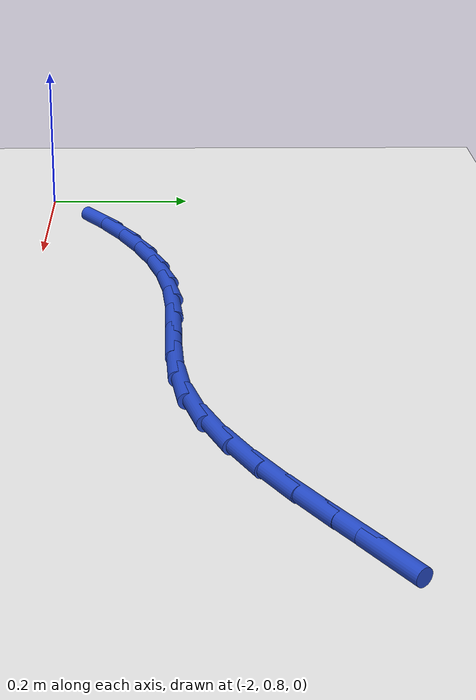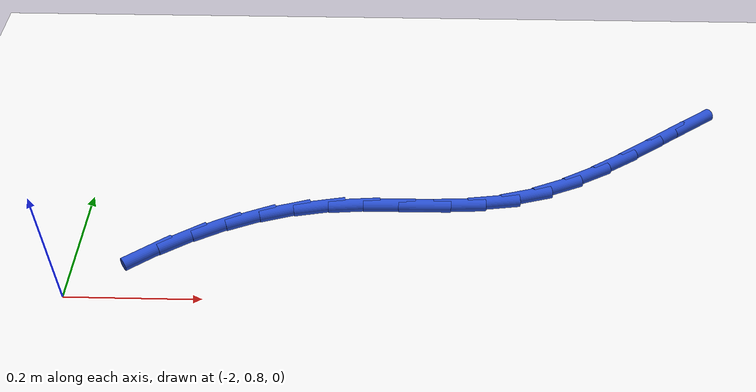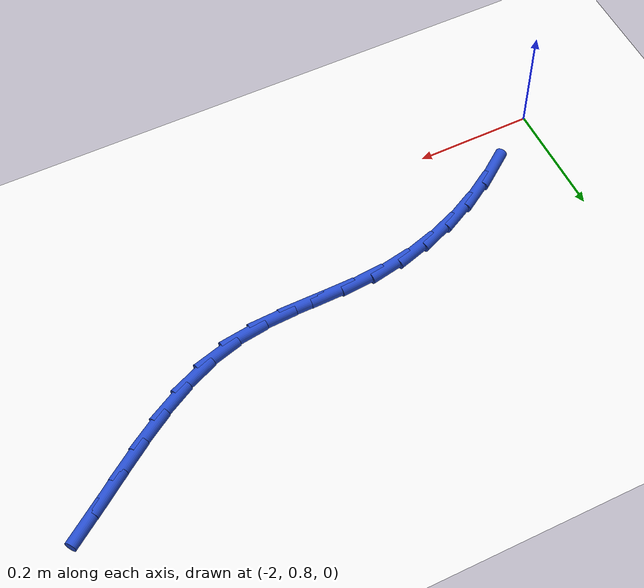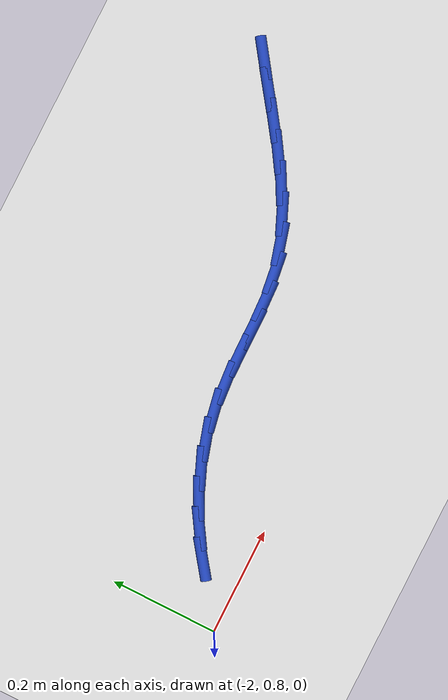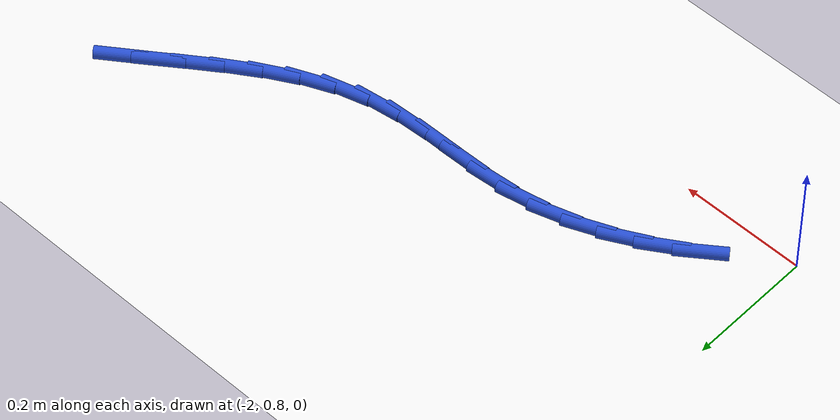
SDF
<sdf version="1.6">
 <world name="default">
  <model name="ground_plane">
   <static>1</static>
   <link name="link">
    <collision name="collision">
     <geometry><plane><normal>0 0 1</normal><size>100 100</size></plane></geometry>
     <surface><friction><ode><mu>100</mu><mu2>50</mu2></ode></friction></surface>
    </collision>
    <visual name="visual">
     <cast_shadows>0</cast_shadows>
     <geometry><plane><normal>0 0 1</normal><size>100 100</size></plane></geometry>
     <material>
      <script><uri>file://media/materials/scripts/gazebo.material</uri><name>Gazebo/WhiteGlow</name></script>
     </material>
    </visual>
   </link>
  </model>
  <model name="line">
   <link name="link_35">
    <pose>-1.0486640952737338 1.1815275703631092 0.01 0 1.57 0.6168831982159091</pose>
    <collision name="collision">
     <geometry><cylinder><radius>0.01</radius><length>0.08</length></cylinder></geometry>
    </collision>
    <visual name="visual">
     <material>
      <script><name>Gazebo/Blue</name><uri>file://media/materials/scripts/gazebo.material</uri></script>
     </material>
     <geometry><cylinder><radius>0.01</radius><length>0.08</length></cylinder></geometry>
    </visual>
   </link>
   <link name="link_36">
    <pose>-1.09414152573304 1.1492743350750647 0.01 0 1.57 0.62619913358248</pose>
    <collision name="collision">
     <geometry><cylinder><radius>0.01</radius><length>0.08</length></cylinder></geometry>
    </collision>
    <visual name="visual">
     <material>
      <script><name>Gazebo/Blue</name><uri>file://media/materials/scripts/gazebo.material</uri></script>
     </material>
     <geometry><cylinder><radius>0.01</radius><length>0.08</length></cylinder></geometry>
    </visual>
   </link>
   <link name="link_37">
    <pose>-1.139787754116079 1.1162579912461852 0.01 0 1.57 0.6107113216895229</pose>
    <collision name="collision">
     <geometry><cylinder><radius>0.01</radius><length>0.08</length></cylinder></geometry>
    </collision>
    <visual name="visual">
     <material>
      <script><name>Gazebo/Blue</name><uri>file://media/materials/scripts/gazebo.material</uri></script>
     </material>
     <geometry><cylinder><radius>0.01</radius><length>0.08</length></cylinder></geometry>
    </visual>
   </link>
   <link name="link_38">
    <pose>-1.1858853573160812 1.0839906747359813 0.01 0 1.57 0.5698274325326032</pose>
    <collision name="collision">
     <geometry><cylinder><radius>0.01</radius><length>0.08</length></cylinder></geometry>
    </collision>
    <visual name="visual">
     <material>
      <script><name>Gazebo/Blue</name><uri>file://media/materials/scripts/gazebo.material</uri></script>
     </material>
     <geometry><cylinder><radius>0.01</radius><length>0.08</length></cylinder></geometry>
    </visual>
   </link>
   <link name="link_39">
    <pose>-1.2327169122262789 1.0539845214039603 0.01 0 1.57 0.5015009381086317</pose>
    <collision name="collision">
     <geometry><cylinder><radius>0.01</radius><length>0.08</length></cylinder></geometry>
    </collision>
    <visual name="visual">
     <material>
      <script><name>Gazebo/Blue</name><uri>file://media/materials/scripts/gazebo.material</uri></script>
     </material>
     <geometry><cylinder><radius>0.01</radius><length>0.08</length></cylinder></geometry>
    </visual>
   </link>
   <link name="link_40">
    <pose>-1.2805649957399017 1.027751667109632 0.01 0 1.57 0.4029018999677981</pose>
    <collision name="collision">
     <geometry><cylinder><radius>0.01</radius><length>0.08</length></cylinder></geometry>
    </collision>
    <visual name="visual">
     <material>
      <script><name>Gazebo/Blue</name><uri>file://media/materials/scripts/gazebo.material</uri></script>
     </material>
     <geometry><cylinder><radius>0.01</radius><length>0.08</length></cylinder></geometry>
    </visual>
   </link>
   <link name="link_41">
    <pose>-1.3297121847501825 1.006804247712505 0.01 0 1.57 0.2721472239329551</pose>
    <collision name="collision">
     <geometry><cylinder><radius>0.01</radius><length>0.08</length></cylinder></geometry>
    </collision>
    <visual name="visual">
     <material>
      <script><name>Gazebo/Blue</name><uri>file://media/materials/scripts/gazebo.material</uri></script>
     </material>
     <geometry><cylinder><radius>0.01</radius><length>0.08</length></cylinder></geometry>
    </visual>
   </link>
   <link name="link_42">
    <pose>-1.3804396374061165 0.9926476763889887 0.01 0 1.57 0.1345304223217582</pose>
    <collision name="collision">
     <geometry><cylinder><radius>0.01</radius><length>0.08</length></cylinder></geometry>
    </collision>
    <visual name="visual">
     <material>
      <script><name>Gazebo/Blue</name><uri>file://media/materials/scripts/gazebo.material</uri></script>
     </material>
     <geometry><cylinder><radius>0.01</radius><length>0.08</length></cylinder></geometry>
    </visual>
   </link>
   <link name="link_43">
    <pose>-1.4327705037528438 0.9855648015450075 0.01 0 1.57 0.04417707886031743</pose>
    <collision name="collision">
     <geometry><cylinder><radius>0.01</radius><length>0.08</length></cylinder></geometry>
    </collision>
    <visual name="visual">
     <material>
      <script><name>Gazebo/Blue</name><uri>file://media/materials/scripts/gazebo.material</uri></script>
     </material>
     <geometry><cylinder><radius>0.01</radius><length>0.08</length></cylinder></geometry>
    </visual>
   </link>
   <link name="link_44">
    <pose>-1.4861719895757746 0.9832041439970333 0.01 0 1.57 0.006169271556818146</pose>
    <collision name="collision">
     <geometry><cylinder><radius>0.01</radius><length>0.08</length></cylinder></geometry>
    </collision>
    <visual name="visual">
     <material>
      <script><name>Gazebo/Blue</name><uri>file://media/materials/scripts/gazebo.material</uri></script>
     </material>
     <geometry><cylinder><radius>0.01</radius><length>0.08</length></cylinder></geometry>
    </visual>
   </link>
   <link name="link_45">
    <pose>-1.5400390400083295 0.9828718193188567 0.01 0 1.57 0.018570758008508312</pose>
    <collision name="collision">
     <geometry><cylinder><radius>0.01</radius><length>0.08</length></cylinder></geometry>
    </collision>
    <visual name="visual">
     <material>
      <script><name>Gazebo/Blue</name><uri>file://media/materials/scripts/gazebo.material</uri></script>
     </material>
     <geometry><cylinder><radius>0.01</radius><length>0.08</length></cylinder></geometry>
    </visual>
   </link>
   <link name="link_46">
    <pose>-1.5937666001839301 0.9818739430842693 0.01 0 1.57 0.08205473744704245</pose>
    <collision name="collision">
     <geometry><cylinder><radius>0.01</radius><length>0.08</length></cylinder></geometry>
    </collision>
    <visual name="visual">
     <material>
      <script><name>Gazebo/Blue</name><uri>file://media/materials/scripts/gazebo.material</uri></script>
     </material>
     <geometry><cylinder><radius>0.01</radius><length>0.08</length></cylinder></geometry>
    </visual>
   </link>
   <link name="link_47">
    <pose>-1.6467496188432393 0.9775166518217903 0.01 0 1.57 0.18775828966132785</pose>
    <collision name="collision">
     <geometry><cylinder><radius>0.01</radius><length>0.08</length></cylinder></geometry>
    </collision>
    <visual name="visual">
     <material>
      <script><name>Gazebo/Blue</name><uri>file://media/materials/scripts/gazebo.material</uri></script>
     </material>
     <geometry><cylinder><radius>0.01</radius><length>0.08</length></cylinder></geometry>
    </visual>
   </link>
   <link name="link_48">
    <pose>-1.698483129375822 0.9676874808317317 0.01 0 1.57 0.29531635747888274</pose>
    <collision name="collision">
     <geometry><cylinder><radius>0.01</radius><length>0.08</length></cylinder></geometry>
    </collision>
    <visual name="visual">
     <material>
      <script><name>Gazebo/Blue</name><uri>file://media/materials/scripts/gazebo.material</uri></script>
     </material>
     <geometry><cylinder><radius>0.01</radius><length>0.08</length></cylinder></geometry>
    </visual>
   </link>
   <link name="link_49">
    <pose>-1.7488235589084793 0.9523733270774972 0.01 0 1.57 0.3942623339631377</pose>
    <collision name="collision">
     <geometry><cylinder><radius>0.01</radius><length>0.08</length></cylinder></geometry>
    </collision>
    <visual name="visual">
     <material>
      <script><name>Gazebo/Blue</name><uri>file://media/materials/scripts/gazebo.material</uri></script>
     </material>
     <geometry><cylinder><radius>0.01</radius><length>0.08</length></cylinder></geometry>
    </visual>
   </link>
   <link name="link_50">
    <pose>-1.7977088773679162 0.9320347753880392 0.01 0 1.57 0.48401071138145113</pose>
    <collision name="collision">
     <geometry><cylinder><radius>0.01</radius><length>0.08</length></cylinder></geometry>
    </collision>
    <visual name="visual">
     <material>
      <script><name>Gazebo/Blue</name><uri>file://media/materials/scripts/gazebo.material</uri></script>
     </material>
     <geometry><cylinder><radius>0.01</radius><length>0.08</length></cylinder></geometry>
    </visual>
   </link>
   <link name="link_51">
    <pose>-1.8450770546808362 0.9071324105923102 0.01 0 1.57 0.5646611842871024</pose>
    <collision name="collision">
     <geometry><cylinder><radius>0.01</radius><length>0.08</length></cylinder></geometry>
    </collision>
    <visual name="visual">
     <material>
      <script><name>Gazebo/Blue</name><uri>file://media/materials/scripts/gazebo.material</uri></script>
     </material>
     <geometry><cylinder><radius>0.01</radius><length>0.08</length></cylinder></geometry>
    </visual>
   </link>
   <link name="link_52">
    <pose>-1.8908660607739434 0.8781268175192626 0.01 0 1.57 0.6367608606234233</pose>
    <collision name="collision">
     <geometry><cylinder><radius>0.01</radius><length>0.08</length></cylinder></geometry>
    </collision>
    <visual name="visual">
     <material>
      <script><name>Gazebo/Blue</name><uri>file://media/materials/scripts/gazebo.material</uri></script>
     </material>
     <geometry><cylinder><radius>0.01</radius><length>0.08</length></cylinder></geometry>
    </visual>
   </link>
  </model>
 </world>
</sdf>
